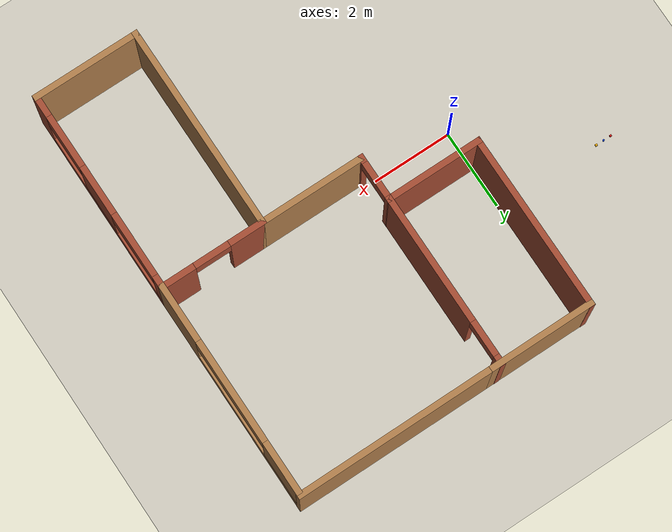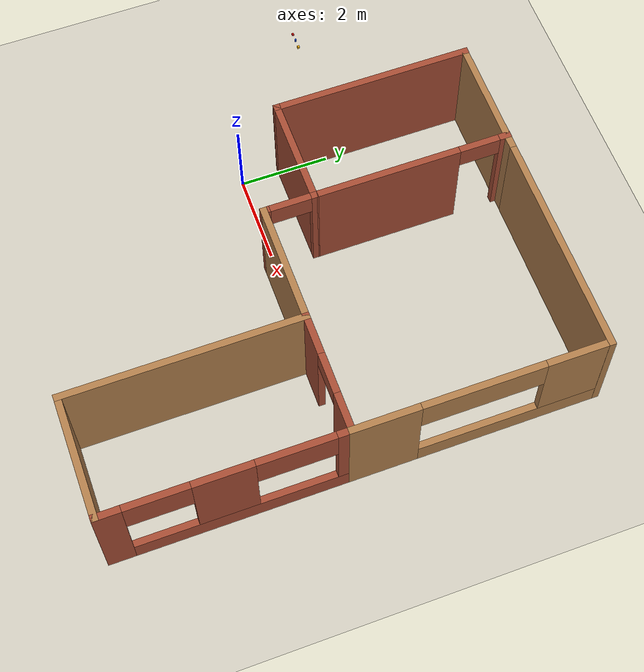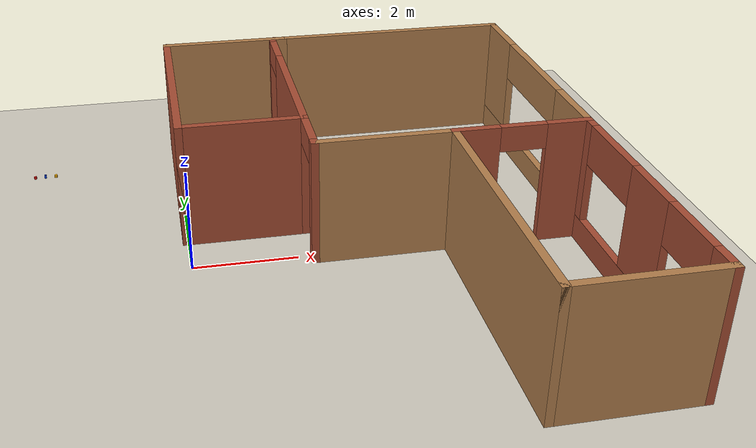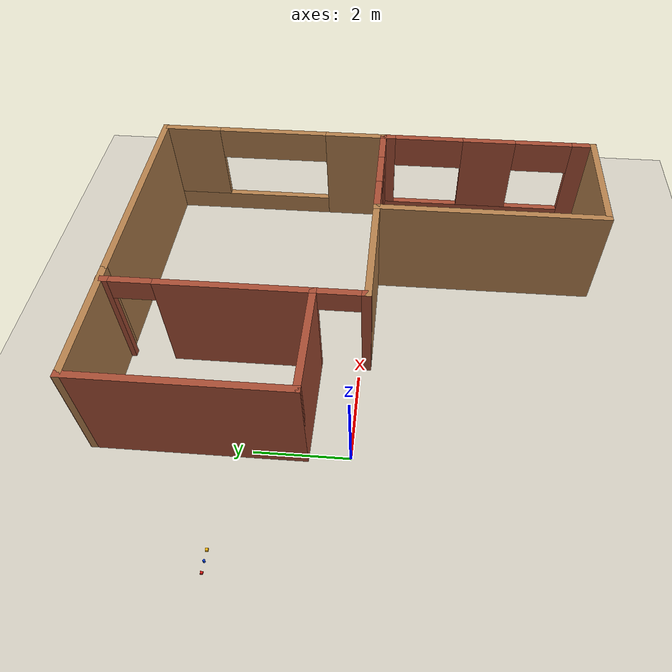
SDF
<sdf version="1.6">
 <world name="default">
  <model name="ground">
   <static>true</static>
   <link name="ground">
    <collision name="ground">
     <geometry><plane><normal>0 0 1</normal><size>100 100</size></plane></geometry>
    </collision>
    <visual name="ground">
     <geometry><plane><normal>0 0 1</normal><size>30 24</size></plane></geometry>
     <material>
      <ambient>.76 .74 .69 1</ambient>
      <diffuse>.82 .80 .75 1</diffuse>
      <specular>.02 .02 .02 1</specular>
     </material>
    </visual>
   </link>
  </model>
  <model name="turtlebot3_house">
   <link name="Wall_101">
    <pose>-0.05 3.1 0 0 0 -1.5708</pose>
    <visual name="Wall_101_Visual">
     <pose>0 0 1.25 0 -0 0</pose>
     <geometry><box><size>4.5 0.15 2.5</size></box></geometry>
     <material>
      <script><uri>file://media/materials/scripts/gazebo.material</uri><name>Gazebo/Bricks</name></script>
      <ambient>1 1 1 1</ambient>
      <diffuse>1 1 1 1</diffuse>
      <specular>0.2 0.2 0.2 1</specular>
      <emissive>0 0 0 1</emissive>
     </material>
    </visual>
    <collision name="Wall_101_Collision">
     <pose>0 0 1.25 0 -0 0</pose>
     <geometry><box><size>4.5 0.15 2.5</size></box></geometry>
     <surface>
      <friction>
       <ode><mu>1</mu><mu2>1</mu2><fdir1>0 0 0</fdir1><slip1>0</slip1><slip2>0</slip2></ode>
       <torsional>
        <coefficient>1</coefficient>
        <patch_radius>0</patch_radius>
        <surface_radius>0</surface_radius>
        <use_patch_radius>1</use_patch_radius>
        <ode><slip>0</slip></ode>
       </torsional>
      </friction>
      <bounce><restitution_coefficient>0</restitution_coefficient><threshold>1e+06</threshold></bounce>
      <contact>
       <collide_without_contact>0</collide_without_contact>
       <collide_without_contact_bitmask>1</collide_without_contact_bitmask>
       <collide_bitmask>1</collide_bitmask>
       <ode>
        <soft_cfm>0</soft_cfm>
        <soft_erp>0.2</soft_erp>
        <kp>1e+13</kp>
        <kd>1</kd>
        <max_vel>0.01</max_vel>
        <min_depth>0</min_depth>
       </ode>
       <bullet>
        <split_impulse>1</split_impulse>
        <split_impulse_penetration_threshold>-0.01</split_impulse_penetration_threshold>
        <soft_cfm>0</soft_cfm>
        <soft_erp>0.2</soft_erp>
        <kp>1e+13</kp>
        <kd>1</kd>
       </bullet>
      </contact>
     </surface>
    </collision>
   </link>
   <link name="Wall_104">
    <pose>2.3 3.1 0 0 -0 1.5708</pose>
    <visual name="Wall_104_Visual_1">
     <pose>2.11625 0 1.25 0 -0 0</pose>
     <geometry><box><size>0.267504 0.15 2.5</size></box></geometry>
     <material>
      <script><uri>file://media/materials/scripts/gazebo.material</uri><name>Gazebo/Bricks</name></script>
      <ambient>1 1 1 1</ambient>
      <diffuse>1 1 1 1</diffuse>
      <specular>0.2 0.2 0.2 1</specular>
      <emissive>0 0 0 1</emissive>
     </material>
    </visual>
    <visual name="Wall_104_Visual_2">
     <pose>1.5325 0 2.25 0 -0 0</pose>
     <geometry><box><size>0.9 0.15 0.5</size></box></geometry>
     <material>
      <script><uri>file://media/materials/scripts/gazebo.material</uri><name>Gazebo/Bricks</name></script>
      <ambient>1 1 1 1</ambient>
      <diffuse>1 1 1 1</diffuse>
      <specular>0.2 0.2 0.2 1</specular>
      <emissive>0 0 0 1</emissive>
     </material>
    </visual>
    <visual name="Wall_104_Visual_0">
     <pose>-0.583752 0 1.25 0 -0 0</pose>
     <geometry><box><size>3.3325 0.15 2.5</size></box></geometry>
     <material>
      <script><uri>file://media/materials/scripts/gazebo.material</uri><name>Gazebo/Bricks</name></script>
      <ambient>1 1 1 1</ambient>
      <diffuse>1 1 1 1</diffuse>
      <specular>0.2 0.2 0.2 1</specular>
      <emissive>0 0 0 1</emissive>
     </material>
    </visual>
    <collision name="Wall_104_Collision_1">
     <pose>2.11625 0 1.25 0 -0 0</pose>
     <geometry><box><size>0.267504 0.15 2.5</size></box></geometry>
     <surface>
      <friction>
       <ode><mu>1</mu><mu2>1</mu2><fdir1>0 0 0</fdir1><slip1>0</slip1><slip2>0</slip2></ode>
       <torsional>
        <coefficient>1</coefficient>
        <patch_radius>0</patch_radius>
        <surface_radius>0</surface_radius>
        <use_patch_radius>1</use_patch_radius>
        <ode><slip>0</slip></ode>
       </torsional>
      </friction>
      <bounce><restitution_coefficient>0</restitution_coefficient><threshold>1e+06</threshold></bounce>
      <contact>
       <collide_without_contact>0</collide_without_contact>
       <collide_without_contact_bitmask>1</collide_without_contact_bitmask>
       <collide_bitmask>1</collide_bitmask>
       <ode>
        <soft_cfm>0</soft_cfm>
        <soft_erp>0.2</soft_erp>
        <kp>1e+13</kp>
        <kd>1</kd>
        <max_vel>0.01</max_vel>
        <min_depth>0</min_depth>
       </ode>
       <bullet>
        <split_impulse>1</split_impulse>
        <split_impulse_penetration_threshold>-0.01</split_impulse_penetration_threshold>
        <soft_cfm>0</soft_cfm>
        <soft_erp>0.2</soft_erp>
        <kp>1e+13</kp>
        <kd>1</kd>
       </bullet>
      </contact>
     </surface>
    </collision>
    <collision name="Wall_104_Collision_2">
     <pose>1.5325 0 2.25 0 -0 0</pose>
     <geometry><box><size>0.9 0.15 0.5</size></box></geometry>
     <surface>
      <friction>
       <ode><mu>1</mu><mu2>1</mu2><fdir1>0 0 0</fdir1><slip1>0</slip1><slip2>0</slip2></ode>
       <torsional>
        <coefficient>1</coefficient>
        <patch_radius>0</patch_radius>
        <surface_radius>0</surface_radius>
        <use_patch_radius>1</use_patch_radius>
        <ode><slip>0</slip></ode>
       </torsional>
      </friction>
      <bounce><restitution_coefficient>0</restitution_coefficient><threshold>1e+06</threshold></bounce>
      <contact>
       <collide_without_contact>0</collide_without_contact>
       <collide_without_contact_bitmask>1</collide_without_contact_bitmask>
       <collide_bitmask>1</collide_bitmask>
       <ode>
        <soft_cfm>0</soft_cfm>
        <soft_erp>0.2</soft_erp>
        <kp>1e+13</kp>
        <kd>1</kd>
        <max_vel>0.01</max_vel>
        <min_depth>0</min_depth>
       </ode>
       <bullet>
        <split_impulse>1</split_impulse>
        <split_impulse_penetration_threshold>-0.01</split_impulse_penetration_threshold>
        <soft_cfm>0</soft_cfm>
        <soft_erp>0.2</soft_erp>
        <kp>1e+13</kp>
        <kd>1</kd>
       </bullet>
      </contact>
     </surface>
    </collision>
    <collision name="Wall_104_Collision_0">
     <pose>-0.583752 0 1.25 0 -0 0</pose>
     <geometry><box><size>3.3325 0.15 2.5</size></box></geometry>
     <surface>
      <friction>
       <ode><mu>1</mu><mu2>1</mu2><fdir1>0 0 0</fdir1><slip1>0</slip1><slip2>0</slip2></ode>
       <torsional>
        <coefficient>1</coefficient>
        <patch_radius>0</patch_radius>
        <surface_radius>0</surface_radius>
        <use_patch_radius>1</use_patch_radius>
        <ode><slip>0</slip></ode>
       </torsional>
      </friction>
      <bounce><restitution_coefficient>0</restitution_coefficient><threshold>1e+06</threshold></bounce>
      <contact>
       <collide_without_contact>0</collide_without_contact>
       <collide_without_contact_bitmask>1</collide_without_contact_bitmask>
       <collide_bitmask>1</collide_bitmask>
       <ode>
        <soft_cfm>0</soft_cfm>
        <soft_erp>0.2</soft_erp>
        <kp>1e+13</kp>
        <kd>1</kd>
        <max_vel>0.01</max_vel>
        <min_depth>0</min_depth>
       </ode>
       <bullet>
        <split_impulse>1</split_impulse>
        <split_impulse_penetration_threshold>-0.01</split_impulse_penetration_threshold>
        <soft_cfm>0</soft_cfm>
        <soft_erp>0.2</soft_erp>
        <kp>1e+13</kp>
        <kd>1</kd>
       </bullet>
      </contact>
     </surface>
    </collision>
   </link>
   <link name="Wall_106">
    <pose>6.2 -0.175 0 0 -0 0</pose>
    <visual name="Wall_106_Visual_1">
     <pose>0.922235 0 1.25 0 -0 0</pose>
     <geometry><box><size>0.905529 0.15 2.5</size></box></geometry>
     <material>
      <script><uri>file://media/materials/scripts/gazebo.material</uri><name>Gazebo/Bricks</name></script>
      <ambient>1 1 1 1</ambient>
      <diffuse>1 1 1 1</diffuse>
      <specular>0.2 0.2 0.2 1</specular>
      <emissive>0 0 0 1</emissive>
     </material>
    </visual>
    <visual name="Wall_106_Visual_2">
     <pose>0.019471 0 2.25 0 -0 0</pose>
     <geometry><box><size>0.9 0.15 0.5</size></box></geometry>
     <material>
      <script><uri>file://media/materials/scripts/gazebo.material</uri><name>Gazebo/Bricks</name></script>
      <ambient>1 1 1 1</ambient>
      <diffuse>1 1 1 1</diffuse>
      <specular>0.2 0.2 0.2 1</specular>
      <emissive>0 0 0 1</emissive>
     </material>
    </visual>
    <visual name="Wall_106_Visual_0">
     <pose>-0.902765 0 1.25 0 -0 0</pose>
     <geometry><box><size>0.944471 0.15 2.5</size></box></geometry>
     <material>
      <script><uri>file://media/materials/scripts/gazebo.material</uri><name>Gazebo/Bricks</name></script>
      <ambient>1 1 1 1</ambient>
      <diffuse>1 1 1 1</diffuse>
      <specular>0.2 0.2 0.2 1</specular>
      <emissive>0 0 0 1</emissive>
     </material>
    </visual>
    <collision name="Wall_106_Collision_1">
     <pose>0.922235 0 1.25 0 -0 0</pose>
     <geometry><box><size>0.905529 0.15 2.5</size></box></geometry>
     <surface>
      <friction>
       <ode><mu>1</mu><mu2>1</mu2><fdir1>0 0 0</fdir1><slip1>0</slip1><slip2>0</slip2></ode>
       <torsional>
        <coefficient>1</coefficient>
        <patch_radius>0</patch_radius>
        <surface_radius>0</surface_radius>
        <use_patch_radius>1</use_patch_radius>
        <ode><slip>0</slip></ode>
       </torsional>
      </friction>
      <bounce><restitution_coefficient>0</restitution_coefficient><threshold>1e+06</threshold></bounce>
      <contact>
       <collide_without_contact>0</collide_without_contact>
       <collide_without_contact_bitmask>1</collide_without_contact_bitmask>
       <collide_bitmask>1</collide_bitmask>
       <ode>
        <soft_cfm>0</soft_cfm>
        <soft_erp>0.2</soft_erp>
        <kp>1e+13</kp>
        <kd>1</kd>
        <max_vel>0.01</max_vel>
        <min_depth>0</min_depth>
       </ode>
       <bullet>
        <split_impulse>1</split_impulse>
        <split_impulse_penetration_threshold>-0.01</split_impulse_penetration_threshold>
        <soft_cfm>0</soft_cfm>
        <soft_erp>0.2</soft_erp>
        <kp>1e+13</kp>
        <kd>1</kd>
       </bullet>
      </contact>
     </surface>
    </collision>
    <collision name="Wall_106_Collision_0">
     <pose>-0.902765 0 1.25 0 -0 0</pose>
     <geometry><box><size>0.944471 0.15 2.5</size></box></geometry>
     <surface>
      <friction>
       <ode><mu>1</mu><mu2>1</mu2><fdir1>0 0 0</fdir1><slip1>0</slip1><slip2>0</slip2></ode>
       <torsional>
        <coefficient>1</coefficient>
        <patch_radius>0</patch_radius>
        <surface_radius>0</surface_radius>
        <use_patch_radius>1</use_patch_radius>
        <ode><slip>0</slip></ode>
       </torsional>
      </friction>
      <bounce><restitution_coefficient>0</restitution_coefficient><threshold>1e+06</threshold></bounce>
      <contact>
       <collide_without_contact>0</collide_without_contact>
       <collide_without_contact_bitmask>1</collide_without_contact_bitmask>
       <collide_bitmask>1</collide_bitmask>
       <ode>
        <soft_cfm>0</soft_cfm>
        <soft_erp>0.2</soft_erp>
        <kp>1e+13</kp>
        <kd>1</kd>
        <max_vel>0.01</max_vel>
        <min_depth>0</min_depth>
       </ode>
       <bullet>
        <split_impulse>1</split_impulse>
        <split_impulse_penetration_threshold>-0.01</split_impulse_penetration_threshold>
        <soft_cfm>0</soft_cfm>
        <soft_erp>0.2</soft_erp>
        <kp>1e+13</kp>
        <kd>1</kd>
       </bullet>
      </contact>
     </surface>
    </collision>
    <collision name="Wall_106_Collision_2">
     <pose>0.019471 0 2.25 0 -0 0</pose>
     <geometry><box><size>0.9 0.15 0.5</size></box></geometry>
     <surface>
      <friction>
       <ode><mu>1</mu><mu2>1</mu2><fdir1>0 0 0</fdir1><slip1>0</slip1><slip2>0</slip2></ode>
       <torsional>
        <coefficient>1</coefficient>
        <patch_radius>0</patch_radius>
        <surface_radius>0</surface_radius>
        <use_patch_radius>1</use_patch_radius>
        <ode><slip>0</slip></ode>
       </torsional>
      </friction>
      <bounce><restitution_coefficient>0</restitution_coefficient><threshold>1e+06</threshold></bounce>
      <contact>
       <collide_without_contact>0</collide_without_contact>
       <collide_without_contact_bitmask>1</collide_without_contact_bitmask>
       <collide_bitmask>1</collide_bitmask>
       <ode>
        <soft_cfm>0</soft_cfm>
        <soft_erp>0.2</soft_erp>
        <kp>1e+13</kp>
        <kd>1</kd>
        <max_vel>0.01</max_vel>
        <min_depth>0</min_depth>
       </ode>
       <bullet>
        <split_impulse>1</split_impulse>
        <split_impulse_penetration_threshold>-0.01</split_impulse_penetration_threshold>
        <soft_cfm>0</soft_cfm>
        <soft_erp>0.2</soft_erp>
        <kp>1e+13</kp>
        <kd>1</kd>
       </bullet>
      </contact>
     </surface>
    </collision>
   </link>
   <link name="Wall_81">
    <pose>5.07752 5.2688 0 0 -0 3.14159</pose>
    <visual name="Wall_81_Visual">
     <pose>0 0 1.25 0 -0 0</pose>
     <geometry><box><size>5 0.15 2.5</size></box></geometry>
     <material>
      <script><uri>file://media/materials/scripts/gazebo.material</uri><name>Gazebo/Wood</name></script>
      <ambient>1 1 1 1</ambient>
      <diffuse>1 1 1 1</diffuse>
      <specular>0.2 0.2 0.2 1</specular>
      <emissive>0 0 0 1</emissive>
     </material>
    </visual>
    <collision name="Wall_81_Collision">
     <pose>0 0 1.25 0 -0 0</pose>
     <geometry><box><size>5 0.15 2.5</size></box></geometry>
     <surface>
      <friction>
       <ode><mu>1</mu><mu2>1</mu2><fdir1>0 0 0</fdir1><slip1>0</slip1><slip2>0</slip2></ode>
       <torsional>
        <coefficient>1</coefficient>
        <patch_radius>0</patch_radius>
        <surface_radius>0</surface_radius>
        <use_patch_radius>1</use_patch_radius>
        <ode><slip>0</slip></ode>
       </torsional>
      </friction>
      <bounce><restitution_coefficient>0</restitution_coefficient><threshold>1e+06</threshold></bounce>
      <contact>
       <collide_without_contact>0</collide_without_contact>
       <collide_without_contact_bitmask>1</collide_without_contact_bitmask>
       <collide_bitmask>1</collide_bitmask>
       <ode>
        <soft_cfm>0</soft_cfm>
        <soft_erp>0.2</soft_erp>
        <kp>1e+13</kp>
        <kd>1</kd>
        <max_vel>0.01</max_vel>
        <min_depth>0</min_depth>
       </ode>
       <bullet>
        <split_impulse>1</split_impulse>
        <split_impulse_penetration_threshold>-0.01</split_impulse_penetration_threshold>
        <soft_cfm>0</soft_cfm>
        <soft_erp>0.2</soft_erp>
        <kp>1e+13</kp>
        <kd>1</kd>
       </bullet>
      </contact>
     </surface>
    </collision>
   </link>
   <link name="Wall_82">
    <pose>1.25 5.26876 0 0 -0 3.14159</pose>
    <visual name="Wall_82_Visual">
     <pose>0 0 1.25 0 -0 0</pose>
     <geometry><box><size>2.75 0.15 2.5</size></box></geometry>
     <material>
      <script><uri>file://media/materials/scripts/gazebo.material</uri><name>Gazebo/Wood</name></script>
      <ambient>1 1 1 1</ambient>
      <diffuse>1 1 1 1</diffuse>
      <specular>0.2 0.2 0.2 1</specular>
      <emissive>0 0 0 1</emissive>
     </material>
    </visual>
    <collision name="Wall_82_Collision">
     <pose>0 0 1.25 0 -0 0</pose>
     <geometry><box><size>2.75 0.15 2.5</size></box></geometry>
     <surface>
      <friction>
       <ode><mu>1</mu><mu2>1</mu2><fdir1>0 0 0</fdir1><slip1>0</slip1><slip2>0</slip2></ode>
       <torsional>
        <coefficient>1</coefficient>
        <patch_radius>0</patch_radius>
        <surface_radius>0</surface_radius>
        <use_patch_radius>1</use_patch_radius>
        <ode><slip>0</slip></ode>
       </torsional>
      </friction>
      <bounce><restitution_coefficient>0</restitution_coefficient><threshold>1e+06</threshold></bounce>
      <contact>
       <collide_without_contact>0</collide_without_contact>
       <collide_without_contact_bitmask>1</collide_without_contact_bitmask>
       <collide_bitmask>1</collide_bitmask>
       <ode>
        <soft_cfm>0</soft_cfm>
        <soft_erp>0.2</soft_erp>
        <kp>1e+13</kp>
        <kd>1</kd>
        <max_vel>0.01</max_vel>
        <min_depth>0</min_depth>
       </ode>
       <bullet>
        <split_impulse>1</split_impulse>
        <split_impulse_penetration_threshold>-0.01</split_impulse_penetration_threshold>
        <soft_cfm>0</soft_cfm>
        <soft_erp>0.2</soft_erp>
        <kp>1e+13</kp>
        <kd>1</kd>
       </bullet>
      </contact>
     </surface>
    </collision>
   </link>
   <link name="Wall_90">
    <pose>1.125 0.925 0 0 -0 0</pose>
    <visual name="Wall_90_Visual">
     <pose>0 0 1.25 0 -0 0</pose>
     <geometry><box><size>2.5 0.15 2.5</size></box></geometry>
     <material>
      <script><uri>file://media/materials/scripts/gazebo.material</uri><name>Gazebo/Bricks</name></script>
      <ambient>1 1 1 1</ambient>
      <diffuse>1 1 1 1</diffuse>
      <specular>0.2 0.2 0.2 1</specular>
      <emissive>0 0 0 1</emissive>
     </material>
    </visual>
    <collision name="Wall_90_Collision">
     <pose>0 0 1.25 0 -0 0</pose>
     <geometry><box><size>2.5 0.15 2.5</size></box></geometry>
     <surface>
      <friction>
       <ode><mu>1</mu><mu2>1</mu2><fdir1>0 0 0</fdir1><slip1>0</slip1><slip2>0</slip2></ode>
       <torsional>
        <coefficient>1</coefficient>
        <patch_radius>0</patch_radius>
        <surface_radius>0</surface_radius>
        <use_patch_radius>1</use_patch_radius>
        <ode><slip>0</slip></ode>
       </torsional>
      </friction>
      <bounce><restitution_coefficient>0</restitution_coefficient><threshold>1e+06</threshold></bounce>
      <contact>
       <collide_without_contact>0</collide_without_contact>
       <collide_without_contact_bitmask>1</collide_without_contact_bitmask>
       <collide_bitmask>1</collide_bitmask>
       <ode>
        <soft_cfm>0</soft_cfm>
        <soft_erp>0.2</soft_erp>
        <kp>1e+13</kp>
        <kd>1</kd>
        <max_vel>0.01</max_vel>
        <min_depth>0</min_depth>
       </ode>
       <bullet>
        <split_impulse>1</split_impulse>
        <split_impulse_penetration_threshold>-0.01</split_impulse_penetration_threshold>
        <soft_cfm>0</soft_cfm>
        <soft_erp>0.2</soft_erp>
        <kp>1e+13</kp>
        <kd>1</kd>
       </bullet>
      </contact>
     </surface>
    </collision>
   </link>
   <link name="Wall_91">
    <pose>2.29994 0.37506 0 0 0 -1.57091</pose>
    <visual name="Wall_91_Visual_0">
     <pose>-0.551501 0 1.25 0 -0 0</pose>
     <geometry><box><size>0.146998 0.15 2.5</size></box></geometry>
     <material>
      <script><uri>file://media/materials/scripts/gazebo.material</uri><name>Gazebo/Bricks</name></script>
      <ambient>1 1 1 1</ambient>
      <diffuse>1 1 1 1</diffuse>
      <specular>0.2 0.2 0.2 1</specular>
      <emissive>0 0 0 1</emissive>
     </material>
    </visual>
    <visual name="Wall_91_Visual_2">
     <pose>-0.028002 0 2.25 0 -0 0</pose>
     <geometry><box><size>0.9 0.15 0.5</size></box></geometry>
     <material>
      <script><uri>file://media/materials/scripts/gazebo.material</uri><name>Gazebo/Bricks</name></script>
      <ambient>1 1 1 1</ambient>
      <diffuse>1 1 1 1</diffuse>
      <specular>0.2 0.2 0.2 1</specular>
      <emissive>0 0 0 1</emissive>
     </material>
    </visual>
    <visual name="Wall_91_Visual_1">
     <pose>0.523499 0 1.25 0 -0 0</pose>
     <geometry><box><size>0.203002 0.15 2.5</size></box></geometry>
     <material>
      <script><uri>file://media/materials/scripts/gazebo.material</uri><name>Gazebo/Bricks</name></script>
      <ambient>1 1 1 1</ambient>
      <diffuse>1 1 1 1</diffuse>
      <specular>0.2 0.2 0.2 1</specular>
      <emissive>0 0 0 1</emissive>
     </material>
    </visual>
    <collision name="Wall_91_Collision_0">
     <pose>-0.551501 0 1.25 0 -0 0</pose>
     <geometry><box><size>0.146998 0.15 2.5</size></box></geometry>
     <surface>
      <friction>
       <ode><mu>1</mu><mu2>1</mu2><fdir1>0 0 0</fdir1><slip1>0</slip1><slip2>0</slip2></ode>
       <torsional>
        <coefficient>1</coefficient>
        <patch_radius>0</patch_radius>
        <surface_radius>0</surface_radius>
        <use_patch_radius>1</use_patch_radius>
        <ode><slip>0</slip></ode>
       </torsional>
      </friction>
      <bounce><restitution_coefficient>0</restitution_coefficient><threshold>1e+06</threshold></bounce>
      <contact>
       <collide_without_contact>0</collide_without_contact>
       <collide_without_contact_bitmask>1</collide_without_contact_bitmask>
       <collide_bitmask>1</collide_bitmask>
       <ode>
        <soft_cfm>0</soft_cfm>
        <soft_erp>0.2</soft_erp>
        <kp>1e+13</kp>
        <kd>1</kd>
        <max_vel>0.01</max_vel>
        <min_depth>0</min_depth>
       </ode>
       <bullet>
        <split_impulse>1</split_impulse>
        <split_impulse_penetration_threshold>-0.01</split_impulse_penetration_threshold>
        <soft_cfm>0</soft_cfm>
        <soft_erp>0.2</soft_erp>
        <kp>1e+13</kp>
        <kd>1</kd>
       </bullet>
      </contact>
     </surface>
    </collision>
    <collision name="Wall_91_Collision_1">
     <pose>0.523499 0 1.25 0 -0 0</pose>
     <geometry><box><size>0.203002 0.15 2.5</size></box></geometry>
     <surface>
      <friction>
       <ode><mu>1</mu><mu2>1</mu2><fdir1>0 0 0</fdir1><slip1>0</slip1><slip2>0</slip2></ode>
       <torsional>
        <coefficient>1</coefficient>
        <patch_radius>0</patch_radius>
        <surface_radius>0</surface_radius>
        <use_patch_radius>1</use_patch_radius>
        <ode><slip>0</slip></ode>
       </torsional>
      </friction>
      <bounce><restitution_coefficient>0</restitution_coefficient><threshold>1e+06</threshold></bounce>
      <contact>
       <collide_without_contact>0</collide_without_contact>
       <collide_without_contact_bitmask>1</collide_without_contact_bitmask>
       <collide_bitmask>1</collide_bitmask>
       <ode>
        <soft_cfm>0</soft_cfm>
        <soft_erp>0.2</soft_erp>
        <kp>1e+13</kp>
        <kd>1</kd>
        <max_vel>0.01</max_vel>
        <min_depth>0</min_depth>
       </ode>
       <bullet>
        <split_impulse>1</split_impulse>
        <split_impulse_penetration_threshold>-0.01</split_impulse_penetration_threshold>
        <soft_cfm>0</soft_cfm>
        <soft_erp>0.2</soft_erp>
        <kp>1e+13</kp>
        <kd>1</kd>
       </bullet>
      </contact>
     </surface>
    </collision>
    <collision name="Wall_91_Collision_2">
     <pose>-0.028002 0 2.25 0 -0 0</pose>
     <geometry><box><size>0.9 0.15 0.5</size></box></geometry>
     <surface>
      <friction>
       <ode><mu>1</mu><mu2>1</mu2><fdir1>0 0 0</fdir1><slip1>0</slip1><slip2>0</slip2></ode>
       <torsional>
        <coefficient>1</coefficient>
        <patch_radius>0</patch_radius>
        <surface_radius>0</surface_radius>
        <use_patch_radius>1</use_patch_radius>
        <ode><slip>0</slip></ode>
       </torsional>
      </friction>
      <bounce><restitution_coefficient>0</restitution_coefficient><threshold>1e+06</threshold></bounce>
      <contact>
       <collide_without_contact>0</collide_without_contact>
       <collide_without_contact_bitmask>1</collide_without_contact_bitmask>
       <collide_bitmask>1</collide_bitmask>
       <ode>
        <soft_cfm>0</soft_cfm>
        <soft_erp>0.2</soft_erp>
        <kp>1e+13</kp>
        <kd>1</kd>
        <max_vel>0.01</max_vel>
        <min_depth>0</min_depth>
       </ode>
       <bullet>
        <split_impulse>1</split_impulse>
        <split_impulse_penetration_threshold>-0.01</split_impulse_penetration_threshold>
        <soft_cfm>0</soft_cfm>
        <soft_erp>0.2</soft_erp>
        <kp>1e+13</kp>
        <kd>1</kd>
       </bullet>
      </contact>
     </surface>
    </collision>
   </link>
   <link name="Wall_92">
    <pose>3.59994 -0.17494 0 0 0 -4.6e-05</pose>
    <visual name="Wall_92_Visual">
     <pose>0 0 1.25 0 -0 0</pose>
     <geometry><box><size>2.75 0.15 2.5</size></box></geometry>
     <material>
      <script><uri>file://media/materials/scripts/gazebo.material</uri><name>Gazebo/Wood</name></script>
      <ambient>1 1 1 1</ambient>
      <diffuse>1 1 1 1</diffuse>
      <specular>0.2 0.2 0.2 1</specular>
      <emissive>0 0 0 1</emissive>
     </material>
    </visual>
    <collision name="Wall_92_Collision">
     <pose>0 0 1.25 0 -0 0</pose>
     <geometry><box><size>2.75 0.15 2.5</size></box></geometry>
     <surface>
      <friction>
       <ode><mu>1</mu><mu2>1</mu2><fdir1>0 0 0</fdir1><slip1>0</slip1><slip2>0</slip2></ode>
       <torsional>
        <coefficient>1</coefficient>
        <patch_radius>0</patch_radius>
        <surface_radius>0</surface_radius>
        <use_patch_radius>1</use_patch_radius>
        <ode><slip>0</slip></ode>
       </torsional>
      </friction>
      <bounce><restitution_coefficient>0</restitution_coefficient><threshold>1e+06</threshold></bounce>
      <contact>
       <collide_without_contact>0</collide_without_contact>
       <collide_without_contact_bitmask>1</collide_without_contact_bitmask>
       <collide_bitmask>1</collide_bitmask>
       <ode>
        <soft_cfm>0</soft_cfm>
        <soft_erp>0.2</soft_erp>
        <kp>1e+13</kp>
        <kd>1</kd>
        <max_vel>0.01</max_vel>
        <min_depth>0</min_depth>
       </ode>
       <bullet>
        <split_impulse>1</split_impulse>
        <split_impulse_penetration_threshold>-0.01</split_impulse_penetration_threshold>
        <soft_cfm>0</soft_cfm>
        <soft_erp>0.2</soft_erp>
        <kp>1e+13</kp>
        <kd>1</kd>
       </bullet>
      </contact>
     </surface>
    </collision>
   </link>
   <link name="Wall_93">
    <pose>4.9 -2.725 0 0 0 -1.5708</pose>
    <visual name="Wall_93_Visual">
     <pose>0 0 1.25 0 -0 0</pose>
     <geometry><box><size>5.25 0.15 2.5</size></box></geometry>
     <material>
      <script><uri>file://media/materials/scripts/gazebo.material</uri><name>Gazebo/Wood</name></script>
      <ambient>1 1 1 1</ambient>
      <diffuse>1 1 1 1</diffuse>
      <specular>0.2 0.2 0.2 1</specular>
      <emissive>0 0 0 1</emissive>
     </material>
    </visual>
    <collision name="Wall_93_Collision">
     <pose>0 0 1.25 0 -0 0</pose>
     <geometry><box><size>5.25 0.15 2.5</size></box></geometry>
     <surface>
      <friction>
       <ode><mu>1</mu><mu2>1</mu2><fdir1>0 0 0</fdir1><slip1>0</slip1><slip2>0</slip2></ode>
       <torsional>
        <coefficient>1</coefficient>
        <patch_radius>0</patch_radius>
        <surface_radius>0</surface_radius>
        <use_patch_radius>1</use_patch_radius>
        <ode><slip>0</slip></ode>
       </torsional>
      </friction>
      <bounce><restitution_coefficient>0</restitution_coefficient><threshold>1e+06</threshold></bounce>
      <contact>
       <collide_without_contact>0</collide_without_contact>
       <collide_without_contact_bitmask>1</collide_without_contact_bitmask>
       <collide_bitmask>1</collide_bitmask>
       <ode>
        <soft_cfm>0</soft_cfm>
        <soft_erp>0.2</soft_erp>
        <kp>1e+13</kp>
        <kd>1</kd>
        <max_vel>0.01</max_vel>
        <min_depth>0</min_depth>
       </ode>
       <bullet>
        <split_impulse>1</split_impulse>
        <split_impulse_penetration_threshold>-0.01</split_impulse_penetration_threshold>
        <soft_cfm>0</soft_cfm>
        <soft_erp>0.2</soft_erp>
        <kp>1e+13</kp>
        <kd>1</kd>
       </bullet>
      </contact>
     </surface>
    </collision>
   </link>
   <link name="Wall_94">
    <pose>6.2 -5.275 0 0 -0 0</pose>
    <visual name="Wall_94_Visual">
     <pose>0 0 1.25 0 -0 0</pose>
     <geometry><box><size>2.75 0.15 2.5</size></box></geometry>
     <material>
      <script><uri>file://media/materials/scripts/gazebo.material</uri><name>Gazebo/Wood</name></script>
      <ambient>1 1 1 1</ambient>
      <diffuse>1 1 1 1</diffuse>
      <specular>0.2 0.2 0.2 1</specular>
      <emissive>0 0 0 1</emissive>
     </material>
    </visual>
    <collision name="Wall_94_Collision">
     <pose>0 0 1.25 0 -0 0</pose>
     <geometry><box><size>2.75 0.15 2.5</size></box></geometry>
     <surface>
      <friction>
       <ode><mu>1</mu><mu2>1</mu2><fdir1>0 0 0</fdir1><slip1>0</slip1><slip2>0</slip2></ode>
       <torsional>
        <coefficient>1</coefficient>
        <patch_radius>0</patch_radius>
        <surface_radius>0</surface_radius>
        <use_patch_radius>1</use_patch_radius>
        <ode><slip>0</slip></ode>
       </torsional>
      </friction>
      <bounce><restitution_coefficient>0</restitution_coefficient><threshold>1e+06</threshold></bounce>
      <contact>
       <collide_without_contact>0</collide_without_contact>
       <collide_without_contact_bitmask>1</collide_without_contact_bitmask>
       <collide_bitmask>1</collide_bitmask>
       <ode>
        <soft_cfm>0</soft_cfm>
        <soft_erp>0.2</soft_erp>
        <kp>1e+13</kp>
        <kd>1</kd>
        <max_vel>0.01</max_vel>
        <min_depth>0</min_depth>
       </ode>
       <bullet>
        <split_impulse>1</split_impulse>
        <split_impulse_penetration_threshold>-0.01</split_impulse_penetration_threshold>
        <soft_cfm>0</soft_cfm>
        <soft_erp>0.2</soft_erp>
        <kp>1e+13</kp>
        <kd>1</kd>
       </bullet>
      </contact>
     </surface>
    </collision>
   </link>
   <link name="Wall_95">
    <pose>7.5 -2.725 0 0 -0 1.5708</pose>
    <visual name="Wall_95_Visual_1">
     <pose>0.295715 0 0.25 0 -0 0</pose>
     <geometry><box><size>4.65857 0.15 0.5</size></box></geometry>
     <material>
      <script><uri>file://media/materials/scripts/gazebo.material</uri><name>Gazebo/Bricks</name></script>
      <ambient>1 1 1 1</ambient>
      <diffuse>1 1 1 1</diffuse>
      <specular>0.2 0.2 0.2 1</specular>
      <emissive>0 0 0 1</emissive>
     </material>
    </visual>
    <visual name="Wall_95_Visual_2">
     <pose>-0.036959 0 1.5 0 -0 0</pose>
     <geometry><box><size>1.27522 0.15 2</size></box></geometry>
     <material>
      <script><uri>file://media/materials/scripts/gazebo.material</uri><name>Gazebo/Bricks</name></script>
      <ambient>1 1 1 1</ambient>
      <diffuse>1 1 1 1</diffuse>
      <specular>0.2 0.2 0.2 1</specular>
      <emissive>0 0 0 1</emissive>
     </material>
    </visual>
    <visual name="Wall_95_Visual_3">
     <pose>2.43783 0 1.5 0 -0 0</pose>
     <geometry><box><size>0.374348 0.15 2</size></box></geometry>
     <material>
      <script><uri>file://media/materials/scripts/gazebo.material</uri><name>Gazebo/Bricks</name></script>
      <ambient>1 1 1 1</ambient>
      <diffuse>1 1 1 1</diffuse>
      <specular>0.2 0.2 0.2 1</specular>
      <emissive>0 0 0 1</emissive>
     </material>
    </visual>
    <visual name="Wall_95_Visual_5">
     <pose>1.42565 0 2.1 0 -0 0</pose>
     <geometry><box><size>1.65 0.15 0.8</size></box></geometry>
     <material>
      <script><uri>file://media/materials/scripts/gazebo.material</uri><name>Gazebo/Bricks</name></script>
      <ambient>1 1 1 1</ambient>
      <diffuse>1 1 1 1</diffuse>
      <specular>0.2 0.2 0.2 1</specular>
      <emissive>0 0 0 1</emissive>
     </material>
    </visual>
    <visual name="Wall_95_Visual_4">
     <pose>-1.35407 0 2.1 0 -0 0</pose>
     <geometry><box><size>1.359 0.15 0.8</size></box></geometry>
     <material>
      <script><uri>file://media/materials/scripts/gazebo.material</uri><name>Gazebo/Bricks</name></script>
      <ambient>1 1 1 1</ambient>
      <diffuse>1 1 1 1</diffuse>
      <specular>0.2 0.2 0.2 1</specular>
      <emissive>0 0 0 1</emissive>
     </material>
    </visual>
    <visual name="Wall_95_Visual_0">
     <pose>-2.32929 0 1.25 0 -0 0</pose>
     <geometry><box><size>0.591431 0.15 2.5</size></box></geometry>
     <material>
      <script><uri>file://media/materials/scripts/gazebo.material</uri><name>Gazebo/Bricks</name></script>
      <ambient>1 1 1 1</ambient>
      <diffuse>1 1 1 1</diffuse>
      <specular>0.2 0.2 0.2 1</specular>
      <emissive>0 0 0 1</emissive>
     </material>
    </visual>
    <collision name="Wall_95_Collision_2">
     <pose>-0.036959 0 1.5 0 -0 0</pose>
     <geometry><box><size>1.27522 0.15 2</size></box></geometry>
     <surface>
      <friction>
       <ode><mu>1</mu><mu2>1</mu2><fdir1>0 0 0</fdir1><slip1>0</slip1><slip2>0</slip2></ode>
       <torsional>
        <coefficient>1</coefficient>
        <patch_radius>0</patch_radius>
        <surface_radius>0</surface_radius>
        <use_patch_radius>1</use_patch_radius>
        <ode><slip>0</slip></ode>
       </torsional>
      </friction>
      <bounce><restitution_coefficient>0</restitution_coefficient><threshold>1e+06</threshold></bounce>
      <contact>
       <collide_without_contact>0</collide_without_contact>
       <collide_without_contact_bitmask>1</collide_without_contact_bitmask>
       <collide_bitmask>1</collide_bitmask>
       <ode>
        <soft_cfm>0</soft_cfm>
        <soft_erp>0.2</soft_erp>
        <kp>1e+13</kp>
        <kd>1</kd>
        <max_vel>0.01</max_vel>
        <min_depth>0</min_depth>
       </ode>
       <bullet>
        <split_impulse>1</split_impulse>
        <split_impulse_penetration_threshold>-0.01</split_impulse_penetration_threshold>
        <soft_cfm>0</soft_cfm>
        <soft_erp>0.2</soft_erp>
        <kp>1e+13</kp>
        <kd>1</kd>
       </bullet>
      </contact>
     </surface>
    </collision>
    <collision name="Wall_95_Collision_3">
     <pose>2.43783 0 1.5 0 -0 0</pose>
     <geometry><box><size>0.374348 0.15 2</size></box></geometry>
     <surface>
      <friction>
       <ode><mu>1</mu><mu2>1</mu2><fdir1>0 0 0</fdir1><slip1>0</slip1><slip2>0</slip2></ode>
       <torsional>
        <coefficient>1</coefficient>
        <patch_radius>0</patch_radius>
        <surface_radius>0</surface_radius>
        <use_patch_radius>1</use_patch_radius>
        <ode><slip>0</slip></ode>
       </torsional>
      </friction>
      <bounce><restitution_coefficient>0</restitution_coefficient><threshold>1e+06</threshold></bounce>
      <contact>
       <collide_without_contact>0</collide_without_contact>
       <collide_without_contact_bitmask>1</collide_without_contact_bitmask>
       <collide_bitmask>1</collide_bitmask>
       <ode>
        <soft_cfm>0</soft_cfm>
        <soft_erp>0.2</soft_erp>
        <kp>1e+13</kp>
        <kd>1</kd>
        <max_vel>0.01</max_vel>
        <min_depth>0</min_depth>
       </ode>
       <bullet>
        <split_impulse>1</split_impulse>
        <split_impulse_penetration_threshold>-0.01</split_impulse_penetration_threshold>
        <soft_cfm>0</soft_cfm>
        <soft_erp>0.2</soft_erp>
        <kp>1e+13</kp>
        <kd>1</kd>
       </bullet>
      </contact>
     </surface>
    </collision>
    <collision name="Wall_95_Collision_5">
     <pose>1.42565 0 2.1 0 -0 0</pose>
     <geometry><box><size>1.65 0.15 0.8</size></box></geometry>
     <surface>
      <friction>
       <ode><mu>1</mu><mu2>1</mu2><fdir1>0 0 0</fdir1><slip1>0</slip1><slip2>0</slip2></ode>
       <torsional>
        <coefficient>1</coefficient>
        <patch_radius>0</patch_radius>
        <surface_radius>0</surface_radius>
        <use_patch_radius>1</use_patch_radius>
        <ode><slip>0</slip></ode>
       </torsional>
      </friction>
      <bounce><restitution_coefficient>0</restitution_coefficient><threshold>1e+06</threshold></bounce>
      <contact>
       <collide_without_contact>0</collide_without_contact>
       <collide_without_contact_bitmask>1</collide_without_contact_bitmask>
       <collide_bitmask>1</collide_bitmask>
       <ode>
        <soft_cfm>0</soft_cfm>
        <soft_erp>0.2</soft_erp>
        <kp>1e+13</kp>
        <kd>1</kd>
        <max_vel>0.01</max_vel>
        <min_depth>0</min_depth>
       </ode>
       <bullet>
        <split_impulse>1</split_impulse>
        <split_impulse_penetration_threshold>-0.01</split_impulse_penetration_threshold>
        <soft_cfm>0</soft_cfm>
        <soft_erp>0.2</soft_erp>
        <kp>1e+13</kp>
        <kd>1</kd>
       </bullet>
      </contact>
     </surface>
    </collision>
    <collision name="Wall_95_Collision_0">
     <pose>-2.32929 0 1.25 0 -0 0</pose>
     <geometry><box><size>0.591431 0.15 2.5</size></box></geometry>
     <surface>
      <friction>
       <ode><mu>1</mu><mu2>1</mu2><fdir1>0 0 0</fdir1><slip1>0</slip1><slip2>0</slip2></ode>
       <torsional>
        <coefficient>1</coefficient>
        <patch_radius>0</patch_radius>
        <surface_radius>0</surface_radius>
        <use_patch_radius>1</use_patch_radius>
        <ode><slip>0</slip></ode>
       </torsional>
      </friction>
      <bounce><restitution_coefficient>0</restitution_coefficient><threshold>1e+06</threshold></bounce>
      <contact>
       <collide_without_contact>0</collide_without_contact>
       <collide_without_contact_bitmask>1</collide_without_contact_bitmask>
       <collide_bitmask>1</collide_bitmask>
       <ode>
        <soft_cfm>0</soft_cfm>
        <soft_erp>0.2</soft_erp>
        <kp>1e+13</kp>
        <kd>1</kd>
        <max_vel>0.01</max_vel>
        <min_depth>0</min_depth>
       </ode>
       <bullet>
        <split_impulse>1</split_impulse>
        <split_impulse_penetration_threshold>-0.01</split_impulse_penetration_threshold>
        <soft_cfm>0</soft_cfm>
        <soft_erp>0.2</soft_erp>
        <kp>1e+13</kp>
        <kd>1</kd>
       </bullet>
      </contact>
     </surface>
    </collision>
    <collision name="Wall_95_Collision_1">
     <pose>0.295715 0 0.25 0 -0 0</pose>
     <geometry><box><size>4.65857 0.15 0.5</size></box></geometry>
     <surface>
      <friction>
       <ode><mu>1</mu><mu2>1</mu2><fdir1>0 0 0</fdir1><slip1>0</slip1><slip2>0</slip2></ode>
       <torsional>
        <coefficient>1</coefficient>
        <patch_radius>0</patch_radius>
        <surface_radius>0</surface_radius>
        <use_patch_radius>1</use_patch_radius>
        <ode><slip>0</slip></ode>
       </torsional>
      </friction>
      <bounce><restitution_coefficient>0</restitution_coefficient><threshold>1e+06</threshold></bounce>
      <contact>
       <collide_without_contact>0</collide_without_contact>
       <collide_without_contact_bitmask>1</collide_without_contact_bitmask>
       <collide_bitmask>1</collide_bitmask>
       <ode>
        <soft_cfm>0</soft_cfm>
        <soft_erp>0.2</soft_erp>
        <kp>1e+13</kp>
        <kd>1</kd>
        <max_vel>0.01</max_vel>
        <min_depth>0</min_depth>
       </ode>
       <bullet>
        <split_impulse>1</split_impulse>
        <split_impulse_penetration_threshold>-0.01</split_impulse_penetration_threshold>
        <soft_cfm>0</soft_cfm>
        <soft_erp>0.2</soft_erp>
        <kp>1e+13</kp>
        <kd>1</kd>
       </bullet>
      </contact>
     </surface>
    </collision>
    <collision name="Wall_95_Collision_4">
     <pose>-1.35407 0 2.1 0 -0 0</pose>
     <geometry><box><size>1.359 0.15 0.8</size></box></geometry>
     <surface>
      <friction>
       <ode><mu>1</mu><mu2>1</mu2><fdir1>0 0 0</fdir1><slip1>0</slip1><slip2>0</slip2></ode>
       <torsional>
        <coefficient>1</coefficient>
        <patch_radius>0</patch_radius>
        <surface_radius>0</surface_radius>
        <use_patch_radius>1</use_patch_radius>
        <ode><slip>0</slip></ode>
       </torsional>
      </friction>
      <bounce><restitution_coefficient>0</restitution_coefficient><threshold>1e+06</threshold></bounce>
      <contact>
       <collide_without_contact>0</collide_without_contact>
       <collide_without_contact_bitmask>1</collide_without_contact_bitmask>
       <collide_bitmask>1</collide_bitmask>
       <ode>
        <soft_cfm>0</soft_cfm>
        <soft_erp>0.2</soft_erp>
        <kp>1e+13</kp>
        <kd>1</kd>
        <max_vel>0.01</max_vel>
        <min_depth>0</min_depth>
       </ode>
       <bullet>
        <split_impulse>1</split_impulse>
        <split_impulse_penetration_threshold>-0.01</split_impulse_penetration_threshold>
        <soft_cfm>0</soft_cfm>
        <soft_erp>0.2</soft_erp>
        <kp>1e+13</kp>
        <kd>1</kd>
       </bullet>
      </contact>
     </surface>
    </collision>
   </link>
   <link name="Wall_96">
    <pose>7.5 2.5 0 0 -0 1.5708</pose>
    <visual name="Wall_96_Visual_1">
     <pose>0.75174 0 0.25 0 -0 0</pose>
     <geometry><box><size>3.99652 0.15 0.5</size></box></geometry>
     <material>
      <script><uri>file://media/materials/scripts/gazebo.material</uri><name>Gazebo/Wood</name></script>
      <ambient>1 1 1 1</ambient>
      <diffuse>1 1 1 1</diffuse>
      <specular>0.2 0.2 0.2 1</specular>
      <emissive>0 0 0 1</emissive>
     </material>
    </visual>
    <visual name="Wall_96_Visual_2">
     <pose>2.06924 0 1.5 0 -0 0</pose>
     <geometry><box><size>1.36152 0.15 2</size></box></geometry>
     <material>
      <script><uri>file://media/materials/scripts/gazebo.material</uri><name>Gazebo/Wood</name></script>
      <ambient>1 1 1 1</ambient>
      <diffuse>1 1 1 1</diffuse>
      <specular>0.2 0.2 0.2 1</specular>
      <emissive>0 0 0 1</emissive>
     </material>
    </visual>
    <visual name="Wall_96_Visual_3">
     <pose>0.070981 0 2.1 0 -0 0</pose>
     <geometry><box><size>2.635 0.15 0.8</size></box></geometry>
     <material>
      <script><uri>file://media/materials/scripts/gazebo.material</uri><name>Gazebo/Wood</name></script>
      <ambient>1 1 1 1</ambient>
      <diffuse>1 1 1 1</diffuse>
      <specular>0.2 0.2 0.2 1</specular>
      <emissive>0 0 0 1</emissive>
     </material>
    </visual>
    <visual name="Wall_96_Visual_0">
     <pose>-1.99826 0 1.25 0 -0 0</pose>
     <geometry><box><size>1.50348 0.15 2.5</size></box></geometry>
     <material>
      <script><uri>file://media/materials/scripts/gazebo.material</uri><name>Gazebo/Wood</name></script>
      <ambient>1 1 1 1</ambient>
      <diffuse>1 1 1 1</diffuse>
      <specular>0.2 0.2 0.2 1</specular>
      <emissive>0 0 0 1</emissive>
     </material>
    </visual>
    <collision name="Wall_96_Collision_2">
     <pose>2.06924 0 1.5 0 -0 0</pose>
     <geometry><box><size>1.36152 0.15 2</size></box></geometry>
     <surface>
      <friction>
       <ode><mu>1</mu><mu2>1</mu2><fdir1>0 0 0</fdir1><slip1>0</slip1><slip2>0</slip2></ode>
       <torsional>
        <coefficient>1</coefficient>
        <patch_radius>0</patch_radius>
        <surface_radius>0</surface_radius>
        <use_patch_radius>1</use_patch_radius>
        <ode><slip>0</slip></ode>
       </torsional>
      </friction>
      <bounce><restitution_coefficient>0</restitution_coefficient><threshold>1e+06</threshold></bounce>
      <contact>
       <collide_without_contact>0</collide_without_contact>
       <collide_without_contact_bitmask>1</collide_without_contact_bitmask>
       <collide_bitmask>1</collide_bitmask>
       <ode>
        <soft_cfm>0</soft_cfm>
        <soft_erp>0.2</soft_erp>
        <kp>1e+13</kp>
        <kd>1</kd>
        <max_vel>0.01</max_vel>
        <min_depth>0</min_depth>
       </ode>
       <bullet>
        <split_impulse>1</split_impulse>
        <split_impulse_penetration_threshold>-0.01</split_impulse_penetration_threshold>
        <soft_cfm>0</soft_cfm>
        <soft_erp>0.2</soft_erp>
        <kp>1e+13</kp>
        <kd>1</kd>
       </bullet>
      </contact>
     </surface>
    </collision>
    <collision name="Wall_96_Collision_0">
     <pose>-1.99826 0 1.25 0 -0 0</pose>
     <geometry><box><size>1.50348 0.15 2.5</size></box></geometry>
     <surface>
      <friction>
       <ode><mu>1</mu><mu2>1</mu2><fdir1>0 0 0</fdir1><slip1>0</slip1><slip2>0</slip2></ode>
       <torsional>
        <coefficient>1</coefficient>
        <patch_radius>0</patch_radius>
        <surface_radius>0</surface_radius>
        <use_patch_radius>1</use_patch_radius>
        <ode><slip>0</slip></ode>
       </torsional>
      </friction>
      <bounce><restitution_coefficient>0</restitution_coefficient><threshold>1e+06</threshold></bounce>
      <contact>
       <collide_without_contact>0</collide_without_contact>
       <collide_without_contact_bitmask>1</collide_without_contact_bitmask>
       <collide_bitmask>1</collide_bitmask>
       <ode>
        <soft_cfm>0</soft_cfm>
        <soft_erp>0.2</soft_erp>
        <kp>1e+13</kp>
        <kd>1</kd>
        <max_vel>0.01</max_vel>
        <min_depth>0</min_depth>
       </ode>
       <bullet>
        <split_impulse>1</split_impulse>
        <split_impulse_penetration_threshold>-0.01</split_impulse_penetration_threshold>
        <soft_cfm>0</soft_cfm>
        <soft_erp>0.2</soft_erp>
        <kp>1e+13</kp>
        <kd>1</kd>
       </bullet>
      </contact>
     </surface>
    </collision>
    <collision name="Wall_96_Collision_3">
     <pose>0.070981 0 2.1 0 -0 0</pose>
     <geometry><box><size>2.635 0.15 0.8</size></box></geometry>
     <surface>
      <friction>
       <ode><mu>1</mu><mu2>1</mu2><fdir1>0 0 0</fdir1><slip1>0</slip1><slip2>0</slip2></ode>
       <torsional>
        <coefficient>1</coefficient>
        <patch_radius>0</patch_radius>
        <surface_radius>0</surface_radius>
        <use_patch_radius>1</use_patch_radius>
        <ode><slip>0</slip></ode>
       </torsional>
      </friction>
      <bounce><restitution_coefficient>0</restitution_coefficient><threshold>1e+06</threshold></bounce>
      <contact>
       <collide_without_contact>0</collide_without_contact>
       <collide_without_contact_bitmask>1</collide_without_contact_bitmask>
       <collide_bitmask>1</collide_bitmask>
       <ode>
        <soft_cfm>0</soft_cfm>
        <soft_erp>0.2</soft_erp>
        <kp>1e+13</kp>
        <kd>1</kd>
        <max_vel>0.01</max_vel>
        <min_depth>0</min_depth>
       </ode>
       <bullet>
        <split_impulse>1</split_impulse>
        <split_impulse_penetration_threshold>-0.01</split_impulse_penetration_threshold>
        <soft_cfm>0</soft_cfm>
        <soft_erp>0.2</soft_erp>
        <kp>1e+13</kp>
        <kd>1</kd>
       </bullet>
      </contact>
     </surface>
    </collision>
    <collision name="Wall_96_Collision_1">
     <pose>0.75174 0 0.25 0 -0 0</pose>
     <geometry><box><size>3.99652 0.15 0.5</size></box></geometry>
     <surface>
      <friction>
       <ode><mu>1</mu><mu2>1</mu2><fdir1>0 0 0</fdir1><slip1>0</slip1><slip2>0</slip2></ode>
       <torsional>
        <coefficient>1</coefficient>
        <patch_radius>0</patch_radius>
        <surface_radius>0</surface_radius>
        <use_patch_radius>1</use_patch_radius>
        <ode><slip>0</slip></ode>
       </torsional>
      </friction>
      <bounce><restitution_coefficient>0</restitution_coefficient><threshold>1e+06</threshold></bounce>
      <contact>
       <collide_without_contact>0</collide_without_contact>
       <collide_without_contact_bitmask>1</collide_without_contact_bitmask>
       <collide_bitmask>1</collide_bitmask>
       <ode>
        <soft_cfm>0</soft_cfm>
        <soft_erp>0.2</soft_erp>
        <kp>1e+13</kp>
        <kd>1</kd>
        <max_vel>0.01</max_vel>
        <min_depth>0</min_depth>
       </ode>
       <bullet>
        <split_impulse>1</split_impulse>
        <split_impulse_penetration_threshold>-0.01</split_impulse_penetration_threshold>
        <soft_cfm>0</soft_cfm>
        <soft_erp>0.2</soft_erp>
        <kp>1e+13</kp>
        <kd>1</kd>
       </bullet>
      </contact>
     </surface>
    </collision>
   </link>
   <static>1</static>
  </model>
  <model name="red_cube">
   <static>false</static>
   <link name="red_cube">
    <pose>-2.85 2.23 1.0455 0 0 0</pose>
    <inertial>
     <mass>0.08</mass>
     <inertia>
      <ixx>2.7000000000000002e-05</ixx>
      <iyy>2.7000000000000002e-05</iyy>
      <izz>2.7000000000000002e-05</izz>
      <ixy>0</ixy>
      <ixz>0</ixz>
      <iyz>0</iyz>
     </inertia>
    </inertial>
    <velocity_decay><linear>0.05</linear><angular>0.05</angular></velocity_decay>
    <collision name="red_cube_collision">
     <geometry><box><size>0.045 0.045 0.045</size></box></geometry>
     <surface><friction><ode><mu>0.9</mu><mu2>0.9</mu2></ode></friction></surface>
    </collision>
    <visual name="red_cube_visual">
     <geometry><box><size>0.045 0.045 0.045</size></box></geometry>
     <material><ambient>.85 .08 .06 1</ambient><diffuse>.85 .08 .06 1</diffuse></material>
    </visual>
   </link>
  </model>
  <model name="blue_cylinder">
   <static>false</static>
   <link name="blue_cylinder">
    <pose>-2.65728 2.23 1.058 0 0 0</pose>
    <inertial>
     <mass>0.1</mass>
     <inertia>
      <ixx>5.083333333333334e-05</ixx>
      <iyy>5.083333333333334e-05</iyy>
      <izz>2e-05</izz>
      <ixy>0</ixy>
      <ixz>0</ixz>
      <iyz>0</iyz>
     </inertia>
    </inertial>
    <velocity_decay><linear>0.05</linear><angular>0.05</angular></velocity_decay>
    <collision name="blue_cylinder_collision">
     <geometry><cylinder><length>0.07</length><radius>0.02</radius></cylinder></geometry>
     <surface><friction><ode><mu>0.9</mu><mu2>0.9</mu2></ode></friction></surface>
    </collision>
    <visual name="blue_cylinder_visual">
     <geometry><cylinder><length>0.07</length><radius>0.02</radius></cylinder></geometry>
     <material><ambient>.04 .25 .85 1</ambient><diffuse>.04 .25 .85 1</diffuse></material>
    </visual>
   </link>
  </model>
  <model name="yellow_cube">
   <static>false</static>
   <link name="yellow_cube">
    <pose>-2.46 2.23 1.048 0 0 0</pose>
    <inertial>
     <mass>0.1</mass>
     <inertia>
      <ixx>4.166666666666668e-05</ixx>
      <iyy>4.166666666666668e-05</iyy>
      <izz>4.166666666666668e-05</izz>
      <ixy>0</ixy>
      <ixz>0</ixz>
      <iyz>0</iyz>
     </inertia>
    </inertial>
    <velocity_decay><linear>0.05</linear><angular>0.05</angular></velocity_decay>
    <collision name="yellow_cube_collision">
     <geometry><box><size>0.05 0.05 0.05</size></box></geometry>
     <surface><friction><ode><mu>0.9</mu><mu2>0.9</mu2></ode></friction></surface>
    </collision>
    <visual name="yellow_cube_visual">
     <geometry><box><size>0.05 0.05 0.05</size></box></geometry>
     <material><ambient>.95 .68 .04 1</ambient><diffuse>.95 .68 .04 1</diffuse></material>
    </visual>
   </link>
  </model>
 </world>
</sdf>
